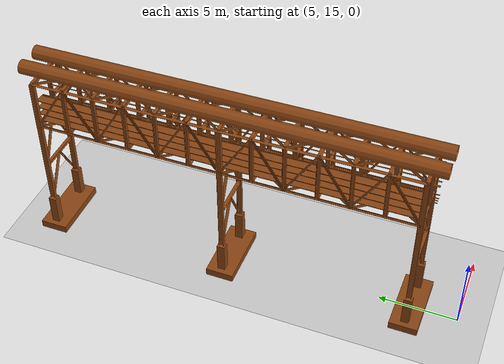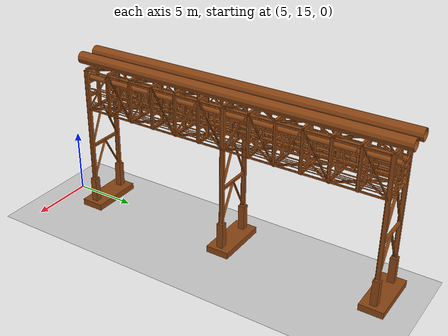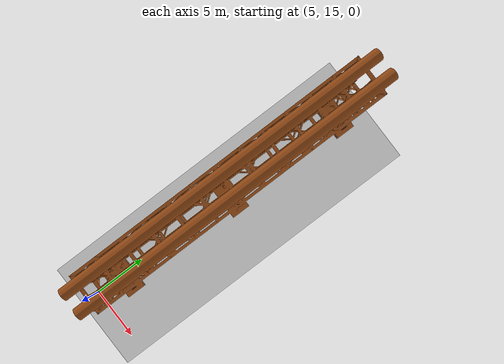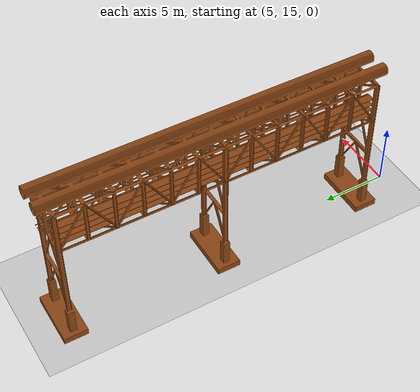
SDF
<?xml version="1.0" ?>
<sdf version="1.5">
  <world name="default">
    <!-- A global light source -->
    <include>
      <uri>model://sun</uri>
    </include>
    <!-- A ground plane -->
    <include>
      <uri>model://ground_plane</uri>
    </include>
    <include>
      <uri>model://asphalt_plane</uri>
    </include>
    <include>
      <uri>model://Piperack-1</uri>
    </include>
    <physics name='default_physics' default='0' type='ode'>
      <gravity>0 0 -9.8066</gravity>
      <ode>
        <solver>
          <type>quick</type>
          <iters>50</iters>
          <sor>1.0</sor>
          <use_dynamic_moi_rescaling>0</use_dynamic_moi_rescaling>
        </solver>
        <constraints>
          <cfm>0</cfm>
          <erp>0.2</erp>
          <contact_max_correcting_vel>100</contact_max_correcting_vel>
          <contact_surface_layer>0.001</contact_surface_layer>
        </constraints>
      </ode>
      <max_step_size>0.004</max_step_size>
      <real_time_factor>1</real_time_factor>
      <real_time_update_rate>250</real_time_update_rate>
      <magnetic_field>6.0e-6 2.3e-5 -4.2e-5</magnetic_field>
    </physics>
  </world>
</sdf>

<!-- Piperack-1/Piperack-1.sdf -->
<sdf version='1.7'>
  <model name='Piperack-1'>
    <static>true</static>
    <pose>5 30 0 0 0 0</pose>
    <link name='base_link'>
      <inertial>
        <pose>0.036692 6.65411 -0 0 -0 0</pose>
        <mass>111997</mass>
        <inertia>
          <ixx>2.26849e+06</ixx>
          <ixy>1.90125e-07</ixy>
          <ixz>8.75251e-06</ixz>
          <iyy>2.30542e+06</iyy>
          <iyz>4.15525e-05</iyz>
          <izz>87242.4</izz>
        </inertia>
      </inertial>
      <collision name='base_link_collision'>
        <pose>0 0 0 0 -0 0</pose>
        <geometry>
          <mesh>
            <scale>1 1 1</scale>
            <uri>model://Piperack-1/meshes/base_link.STL</uri>
          </mesh>
        </geometry>
      </collision>
      <visual name='base_link_visual'>
        <pose>0 0 0 0 -0 0</pose>
        <geometry>
          <mesh>
            <scale>1 1 1</scale>
            <uri>model://Piperack-1/meshes/base_link.STL</uri>
          </mesh>
        </geometry>
        <material>
          <ambient>0.5451 0.2706 0.0745 1</ambient>
          <diffuse>0.5451 0.2706 0.0745 1</diffuse>
        </material>
      </visual>
    </link>
  </model>
</sdf>
